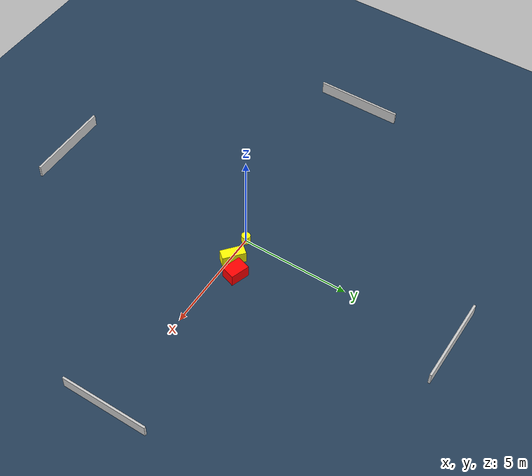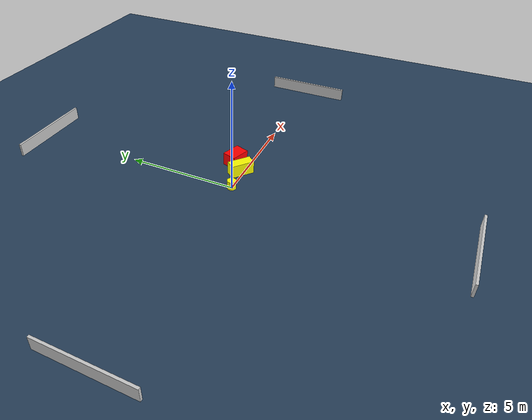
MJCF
<?xml version="1.0" ?>
<mujoco model="generated_environment">
  <option timestep="0.01" integrator="RK4" cone="elliptic"/>
  <default>
    <geom density="1"/>
  </default>
  <asset>
    <texture builtin="gradient" height="3072" name="skybox" rgb1="0.3 0.5 0.7" rgb2="0 0 0" type="skybox" width="512"/>
    <texture builtin="checker" height="300" name="groundplane" rgb1="0.2 0.3 0.4" rgb2="0.1 0.2 0.3" type="2d" width="300"/>
    <material name="groundplane" reflectance="0.2" texrepeat="5 5" texture="groundplane"/>
  </asset>
  <worldbody>
    <light dir="0 0 -1" directional="true" pos="0 0 1.5"/>
    <geom condim="3" friction="0.5 0.005 0.001" material="groundplane" name="floor" pos="0 0 0" size="0 0 0.05" type="plane"/>
    <body name="walls">
      <geom name="wall_1" condim="4" pos="-10.0 0.0 0.3" rgba="0.800000011920929 0.800000011920929 0.800000011920929 1.0" size="0.05 2.0 0.3" type="box"/>
      <geom name="wall_2" condim="4" pos="10.0 0.0 0.3" rgba="0.800000011920929 0.800000011920929 0.800000011920929 1.0" size="0.05 2.0 0.3" type="box"/>
      <geom name="wall_3" condim="4" pos="0.0 -10.0 0.3" rgba="0.800000011920929 0.800000011920929 0.800000011920929 1.0" size="2.0 0.05 0.3" type="box"/>
      <geom name="wall_4" condim="4" pos="0.0 10.0 0.3" rgba="0.800000011920929 0.800000011920929 0.800000011920929 1.0" size="2.0 0.05 0.3" type="box"/>
    </body>
    <body name="robot">
      <joint name="joint_x" type="slide" pos="0 0 0" axis="1 0 0"/>
      <joint name="joint_y" type="slide" pos="0 0 0" axis="0 1 0"/>
      <geom name="robot" type="cylinder" pos="0.0 0.0 0.2" size="0.2 0.2 0.0" mass="5.0" friction="1.0 0.005 0.0001" condim="4" rgba="1.0 1.0 0.0 1.0"/>
    </body>
    <body name="obstacle_1_movable">
      <geom name="obstacle_1_movable" condim="4" pos="1.193577777092123 0.11674379066016828 0.3" euler="0 0 230.4008084658615" friction="0.0 0.005 0.001" rgba="1.0 1.0 0.0 1.0" size="0.23133806693056863 0.5356924854603238 0.3" type="box" mass="0.1"/>
      <joint type="free"/>
    </body>
    <body name="obstacle_2_static">
      <geom name="obstacle_2_static" condim="4" pos="1.813572569297248 0.6713998066151227 0.3" euler="0 0 71.62315970385853" friction="0.0 0.005 0.001" rgba="1.0 0.0 0.0 1.0" size="0.32526361489838584 0.44664220881163164 0.3" type="box"/>
    </body>
  </worldbody>
  <actuator>
    <motor name="actuator_x" joint="joint_x" gear="1" ctrlrange="-1 1"/>
    <motor name="actuator_y" joint="joint_y" gear="1" ctrlrange="-1 1"/>
  </actuator>
</mujoco>
